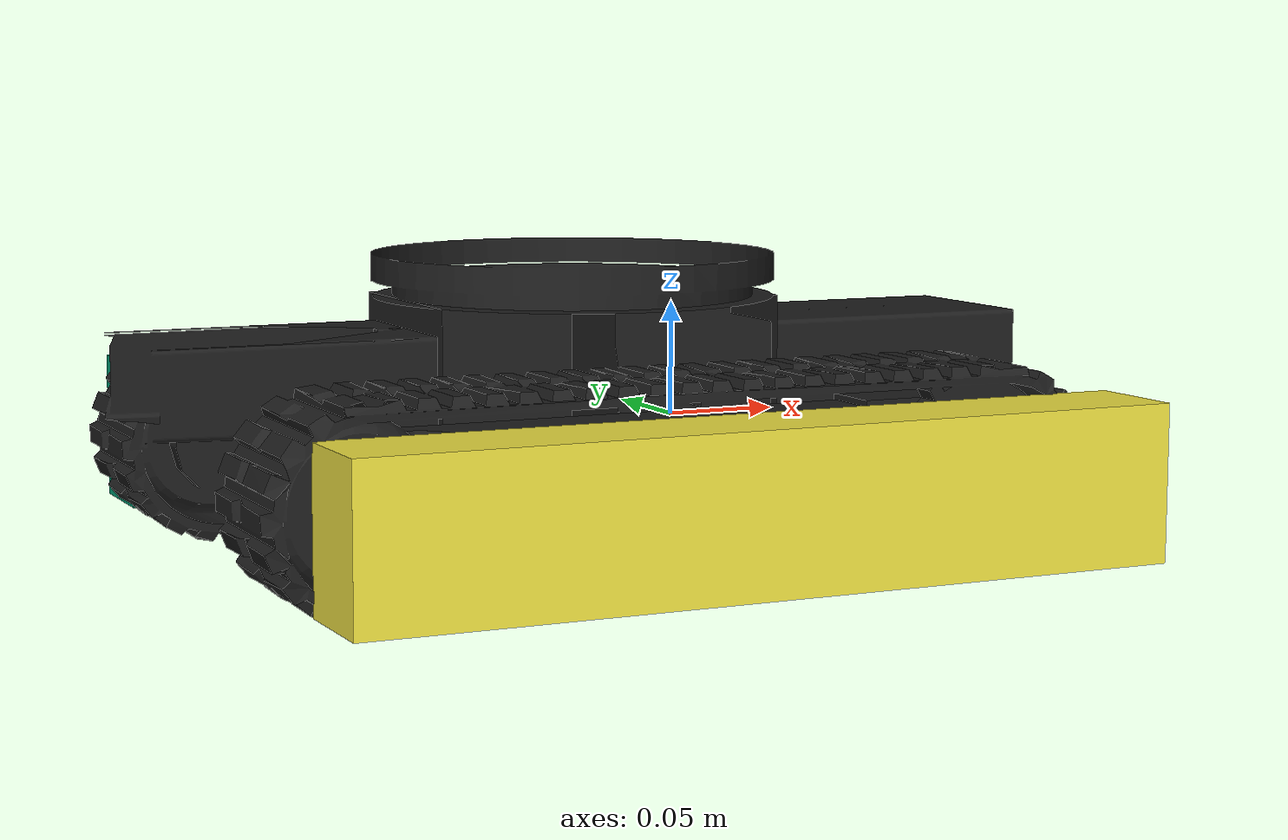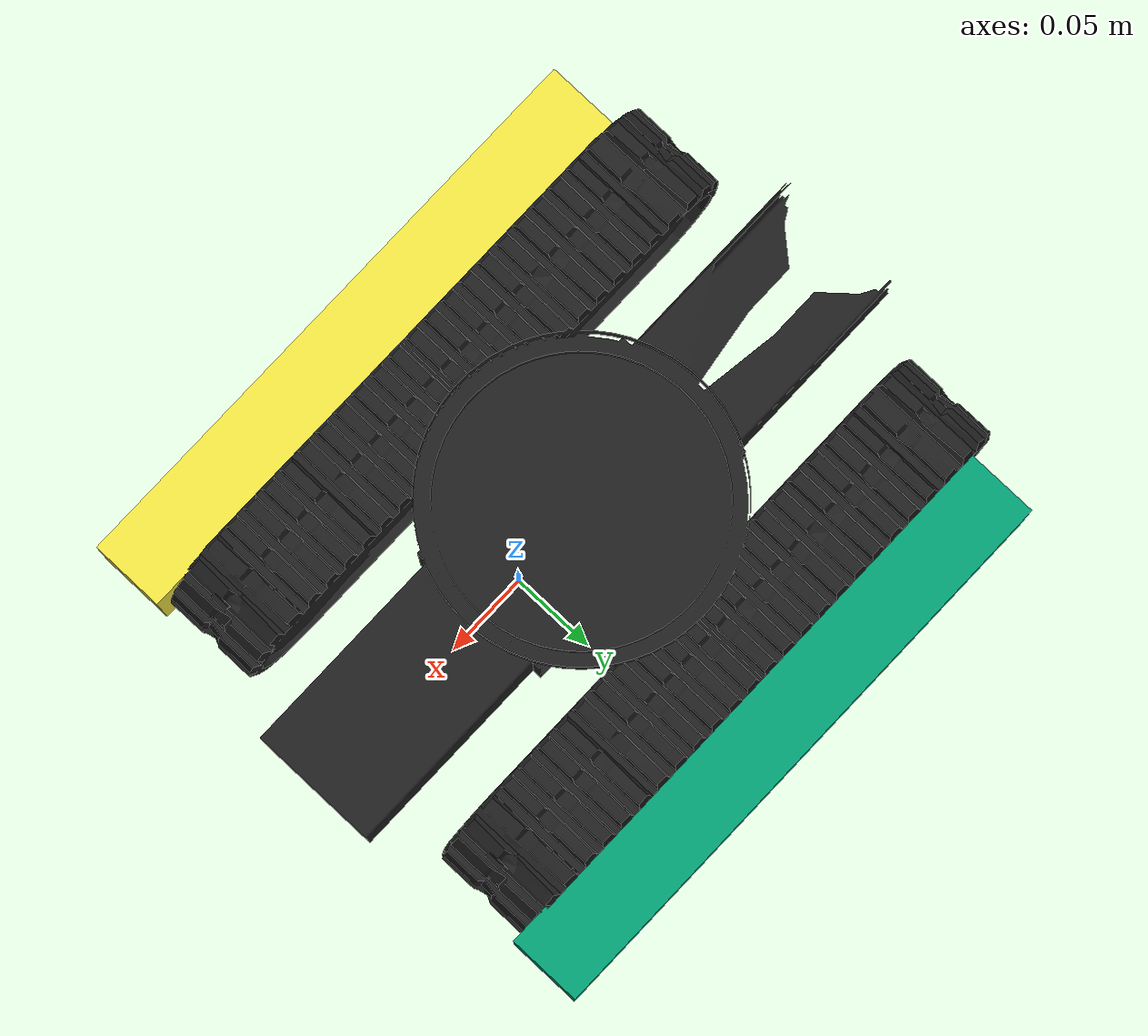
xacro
<?xml version="1.0" ?>
<robot name="brokk_v1" xmlns:xacro="http://ros.org/wiki/xacro">
  <xacro:include filename="$(find brokk)/description/common_properties.xacro"/>
  <xacro:include filename="$(find brokk)/description/brokk_v1_gazebo.xacro"/>

  <xacro:property name="r200_cam_rgb_px" value="0.005"/>
  <xacro:property name="r200_cam_rgb_py" value="0.018"/>
  <xacro:property name="r200_cam_rgb_pz" value="0.013"/>
  <xacro:property name="r200_cam_depth_offset" value="0.01"/>

  <link name="base_footprint"/>

  <joint name="base_joint" type="fixed">
    <parent link="base_footprint"/>
    <child link="base_link"/>
    <origin xyz="0 0 0.010" rpy="0 0 0"/>
  </joint>

  <!--"package://brokk/description/meshes/turtlebot_improv.stl"-->

  <link name="base_link">
    <visual>
      <origin xyz="-0.064 0 -0.09" rpy="0 0 0"/>
      <geometry>
        <mesh filename="package://brokk/description//meshes/turtlebot_improv.stl" scale="0.0025 0.0025 0.0025"/>
      </geometry>
      <material name="light_black"/>
    </visual>

    <collision>
      <origin xyz="-0.064 0 0.047" rpy="0 0 0"/>
      <geometry>
        <box size="0.266 0.266 0.094"/>
      </geometry>
    </collision>

    <inertial>
      <origin xyz="0 0 0" rpy="0 0 0"/>
      <mass value="1.3729096e+00"/>
      <inertia ixx="8.7002718e-03" ixy="-4.7576583e-05" ixz="1.1160499e-04"
               iyy="8.6195418e-03" iyz="-3.5422299e-06"
               izz="1.4612727e-02" />
    </inertial>
  </link>

   <!-- linker vorderer Reifen looo0-->

  <joint name="wheel_left_joint" type="fixed">
    <parent link="base_link"/>
    <child link="wheel_left_link"/>
    <origin xyz="-0.035 0.15 -0.025" rpy="0 0 0"/>
    <axis xyz="1 0 0"/>
  </joint>

  <link name="wheel_left_link">
    <visual>
      <origin xyz="0 0 0" rpy="1.57 0 0"/>
      <geometry>
      	<box size="0.35 0.066 0.044"/>
      </geometry>
      <material name="dark"/>
    </visual>

    <collision>
      <origin xyz="0 0 0" rpy="1.57 0 0"/>
      <geometry>
        <cylinder length="0.04" radius="0.05"/>
      </geometry>
    </collision>

    <inertial>
      <origin xyz="0 0 0" />
      <mass value="2.8498940e-02" />
      <inertia ixx="1.1175580e-05" ixy="-4.2369783e-11" ixz="-5.9381719e-09"
               iyy="1.1192413e-05" iyz="-1.4400107e-11"
               izz="2.0712558e-05" />
      </inertial>
  </link>

   <!-- rechter vorderer Reifen rooo0-->

  <joint name="wheel_right_joint" type="fixed">
    <parent link="base_link"/>
    <child link="wheel_right_link"/>
    <origin xyz="-0.035 -0.15 -0.025" rpy="0 0 0"/>
    <axis xyz="1 0 0"/>
  </joint>

  <link name="wheel_right_link">
    <visual>
      <origin xyz="0 0 0" rpy="1.57 0 0"/>
      <geometry>
     	<box size="0.35 0.066 0.044"/>
      </geometry>
      <material name="dark"/>
    </visual>

    <collision>
      <origin xyz="0 0 0" rpy="1.57 0 0"/>
      <geometry>
        <cylinder length="0.04" radius="0.05"/>
      </geometry>
    </collision>

    <inertial>
      <origin xyz="0 0 0" />
      <mass value="2.8498940e-02" />
      <inertia ixx="1.1175580e-05" ixy="-4.2369783e-11" ixz="-5.9381719e-09"
               iyy="1.1192413e-05" iyz="-1.4400107e-11"
               izz="2.0712558e-05" />
      </inertial>
  </link>

  <joint name="imu_joint" type="fixed">
    <parent link="wheel_right_link"/>
    <child link="imu_link"/>
    <origin xyz="0.0 0 -0.022" rpy="0 0 0"/>
  </joint>

  <link name="imu_link"/>

</robot>
